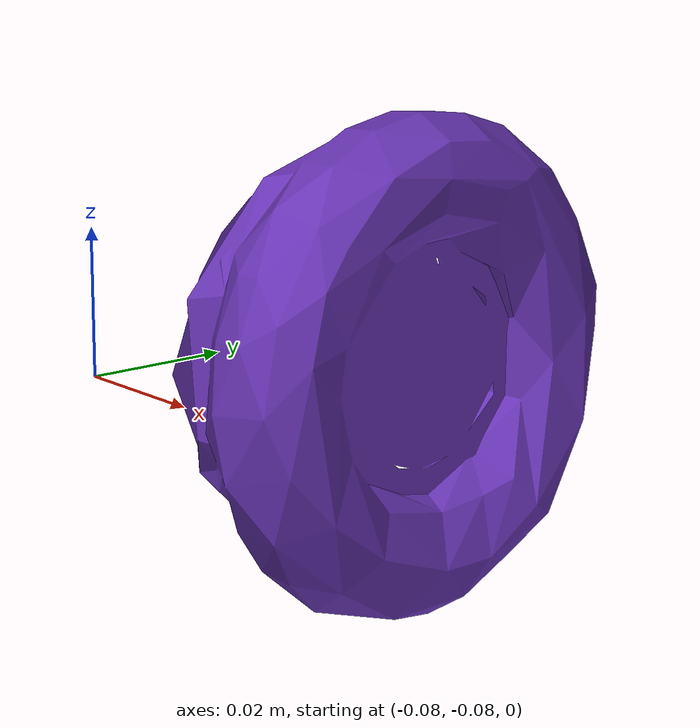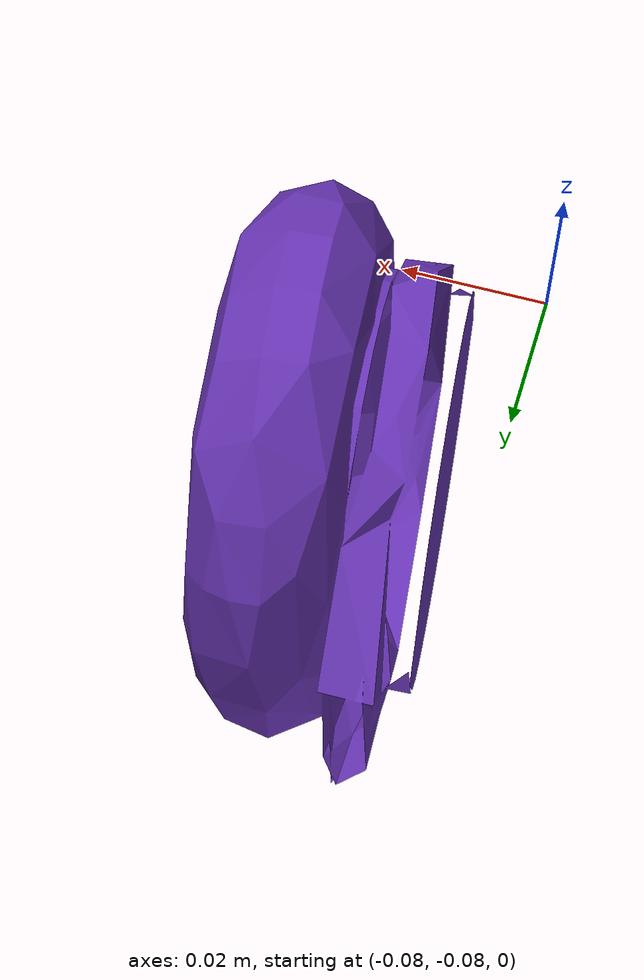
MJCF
<mujoco model="top_watertight_tiny">
  <default>
    <default group="2" type="mesh" contype="0" conaffinity="0">
      <geom group="2" type="mesh" contype="0" conaffinity="0"/>
    </default>
    <default group="3" type="mesh">
      <geom group="3" type="mesh"/>
    </default>
  </default>
  <asset>
    <mesh file="top_watertight_tiny.obj"/>
    <mesh file="top_watertight_tiny_collision_0.obj"/>
    <mesh file="top_watertight_tiny_collision_1.obj"/>
    <mesh file="top_watertight_tiny_collision_2.obj"/>
    <mesh file="top_watertight_tiny_collision_3.obj"/>
    <mesh file="top_watertight_tiny_collision_4.obj"/>
    <mesh file="top_watertight_tiny_collision_5.obj"/>
    <mesh file="top_watertight_tiny_collision_6.obj"/>
    <mesh file="top_watertight_tiny_collision_7.obj"/>
    <mesh file="top_watertight_tiny_collision_8.obj"/>
    <mesh file="top_watertight_tiny_collision_9.obj"/>
    <mesh file="top_watertight_tiny_collision_10.obj"/>
    <mesh file="top_watertight_tiny_collision_11.obj"/>
    <mesh file="top_watertight_tiny_collision_12.obj"/>
    <mesh file="top_watertight_tiny_collision_13.obj"/>
    <mesh file="top_watertight_tiny_collision_14.obj"/>
    <mesh file="top_watertight_tiny_collision_15.obj"/>
    <mesh file="top_watertight_tiny_collision_16.obj"/>
    <mesh file="top_watertight_tiny_collision_17.obj"/>
    <mesh file="top_watertight_tiny_collision_18.obj"/>
    <mesh file="top_watertight_tiny_collision_19.obj"/>
    <mesh file="top_watertight_tiny_collision_20.obj"/>
    <mesh file="top_watertight_tiny_collision_21.obj"/>
    <mesh file="top_watertight_tiny_collision_22.obj"/>
    <mesh file="top_watertight_tiny_collision_23.obj"/>
    <mesh file="top_watertight_tiny_collision_24.obj"/>
    <mesh file="top_watertight_tiny_collision_25.obj"/>
    <mesh file="top_watertight_tiny_collision_26.obj"/>
    <mesh file="top_watertight_tiny_collision_27.obj"/>
    <mesh file="top_watertight_tiny_collision_28.obj"/>
    <mesh file="top_watertight_tiny_collision_29.obj"/>
    <mesh file="top_watertight_tiny_collision_30.obj"/>
    <mesh file="top_watertight_tiny_collision_31.obj"/>
    <mesh file="top_watertight_tiny_collision_32.obj"/>
    <mesh file="top_watertight_tiny_collision_33.obj"/>
    <mesh file="top_watertight_tiny_collision_34.obj"/>
    <mesh file="top_watertight_tiny_collision_35.obj"/>
    <mesh file="top_watertight_tiny_collision_36.obj"/>
    <mesh file="top_watertight_tiny_collision_37.obj"/>
    <mesh file="top_watertight_tiny_collision_38.obj"/>
    <mesh file="top_watertight_tiny_collision_39.obj"/>
    <mesh file="top_watertight_tiny_collision_40.obj"/>
    <mesh file="top_watertight_tiny_collision_41.obj"/>
    <mesh file="top_watertight_tiny_collision_42.obj"/>
    <mesh file="top_watertight_tiny_collision_43.obj"/>
    <mesh file="top_watertight_tiny_collision_44.obj"/>
    <mesh file="top_watertight_tiny_collision_45.obj"/>
    <mesh file="top_watertight_tiny_collision_46.obj"/>
    <mesh file="top_watertight_tiny_collision_47.obj"/>
    <mesh file="top_watertight_tiny_collision_48.obj"/>
    <mesh file="top_watertight_tiny_collision_49.obj"/>
    <mesh file="top_watertight_tiny_collision_50.obj"/>
    <mesh file="top_watertight_tiny_collision_51.obj"/>
    <mesh file="top_watertight_tiny_collision_52.obj"/>
    <mesh file="top_watertight_tiny_collision_53.obj"/>
    <mesh file="top_watertight_tiny_collision_54.obj"/>
    <mesh file="top_watertight_tiny_collision_55.obj"/>
    <mesh file="top_watertight_tiny_collision_56.obj"/>
    <mesh file="top_watertight_tiny_collision_57.obj"/>
    <mesh file="top_watertight_tiny_collision_58.obj"/>
    <mesh file="top_watertight_tiny_collision_59.obj"/>
    <mesh file="top_watertight_tiny_collision_60.obj"/>
    <mesh file="top_watertight_tiny_collision_61.obj"/>
    <mesh file="top_watertight_tiny_collision_62.obj"/>
    <mesh file="top_watertight_tiny_collision_63.obj"/>
    <mesh file="top_watertight_tiny_collision_64.obj"/>
    <mesh file="top_watertight_tiny_collision_65.obj"/>
    <mesh file="top_watertight_tiny_collision_66.obj"/>
    <mesh file="top_watertight_tiny_collision_67.obj"/>
    <mesh file="top_watertight_tiny_collision_68.obj"/>
    <mesh file="top_watertight_tiny_collision_69.obj"/>
    <mesh file="top_watertight_tiny_collision_70.obj"/>
    <mesh file="top_watertight_tiny_collision_71.obj"/>
    <mesh file="top_watertight_tiny_collision_72.obj"/>
    <mesh file="top_watertight_tiny_collision_73.obj"/>
    <mesh file="top_watertight_tiny_collision_74.obj"/>
    <mesh file="top_watertight_tiny_collision_75.obj"/>
    <mesh file="top_watertight_tiny_collision_76.obj"/>
    <mesh file="top_watertight_tiny_collision_77.obj"/>
    <mesh file="top_watertight_tiny_collision_78.obj"/>
    <mesh file="top_watertight_tiny_collision_79.obj"/>
    <mesh file="top_watertight_tiny_collision_80.obj"/>
    <mesh file="top_watertight_tiny_collision_81.obj"/>
    <mesh file="top_watertight_tiny_collision_82.obj"/>
    <mesh file="top_watertight_tiny_collision_83.obj"/>
    <mesh file="top_watertight_tiny_collision_84.obj"/>
    <mesh file="top_watertight_tiny_collision_85.obj"/>
    <mesh file="top_watertight_tiny_collision_86.obj"/>
    <mesh file="top_watertight_tiny_collision_87.obj"/>
    <mesh file="top_watertight_tiny_collision_88.obj"/>
    <mesh file="top_watertight_tiny_collision_89.obj"/>
  </asset>
  <worldbody>
    <body name="top_watertight_tiny">
      <freejoint/>
      <geom mesh="top_watertight_tiny" group="2" type="mesh" rgba="0.4 0.2 0.7 1" contype="0" conaffinity="0"/>
      <geom mesh="top_watertight_tiny_collision_0" rgba="0.13967404998748034 0.14075231439194458 0.1661975414874518 1" group="3" type="mesh"/>
      <geom mesh="top_watertight_tiny_collision_1" rgba="0.27447773743301196 0.16831844666914075 0.09370749998739325 1" group="3" type="mesh"/>
      <geom mesh="top_watertight_tiny_collision_2" rgba="0.20219056866449725 0.17017001246563423 0.9278434954219208 1" group="3" type="mesh"/>
      <geom mesh="top_watertight_tiny_collision_3" rgba="0.1737053008425422 0.5798584439851775 0.5542743538526883 1" group="3" type="mesh"/>
      <geom mesh="top_watertight_tiny_collision_4" rgba="0.35029883774422077 0.051542033867411186 0.19246385584189885 1" group="3" type="mesh"/>
      <geom mesh="top_watertight_tiny_collision_5" rgba="0.7377733532067724 0.018218570703663617 0.1513376896030354 1" group="3" type="mesh"/>
      <geom mesh="top_watertight_tiny_collision_6" rgba="0.37342391334378777 0.4432227076588183 0.705320335968916 1" group="3" type="mesh"/>
      <geom mesh="top_watertight_tiny_collision_7" rgba="0.25501024886004986 0.5828347213136643 0.003481127571495879 1" group="3" type="mesh"/>
      <geom mesh="top_watertight_tiny_collision_8" rgba="0.7166619290358093 0.08472277118647165 0.29299551788600586 1" group="3" type="mesh"/>
      <geom mesh="top_watertight_tiny_collision_9" rgba="0.011452393273562733 0.8800389271475431 0.9404572475272223 1" group="3" type="mesh"/>
      <geom mesh="top_watertight_tiny_collision_10" rgba="0.5652404175792853 0.9143588339539983 0.7957143383330458 1" group="3" type="mesh"/>
      <geom mesh="top_watertight_tiny_collision_11" rgba="0.6767047471468794 0.12481457470514368 0.45185818568785563 1" group="3" type="mesh"/>
      <geom mesh="top_watertight_tiny_collision_12" rgba="0.9300104971976451 0.8860037145221749 0.8659846061743806 1" group="3" type="mesh"/>
      <geom mesh="top_watertight_tiny_collision_13" rgba="0.14998207027154797 0.5314376090248522 0.9947605468009891 1" group="3" type="mesh"/>
      <geom mesh="top_watertight_tiny_collision_14" rgba="0.8285790650451215 0.6632109243324709 0.281904838819226 1" group="3" type="mesh"/>
      <geom mesh="top_watertight_tiny_collision_15" rgba="0.9641817379555113 0.13122233033745423 0.2611958167805364 1" group="3" type="mesh"/>
      <geom mesh="top_watertight_tiny_collision_16" rgba="0.11105071110314002 0.30717053048565357 0.3571464579042224 1" group="3" type="mesh"/>
      <geom mesh="top_watertight_tiny_collision_17" rgba="0.6847288870382722 0.6298711212201424 0.8586182501740283 1" group="3" type="mesh"/>
      <geom mesh="top_watertight_tiny_collision_18" rgba="0.3002619308777329 0.9538388268800996 0.6326675671208345 1" group="3" type="mesh"/>
      <geom mesh="top_watertight_tiny_collision_19" rgba="0.8646528162403466 0.6914503511522109 0.9783332730728452 1" group="3" type="mesh"/>
      <geom mesh="top_watertight_tiny_collision_20" rgba="0.32651951624507036 0.7334866769265499 0.16191330651686675 1" group="3" type="mesh"/>
      <geom mesh="top_watertight_tiny_collision_21" rgba="0.3013116023790223 0.7382009153878227 0.04249710958021202 1" group="3" type="mesh"/>
      <geom mesh="top_watertight_tiny_collision_22" rgba="0.8532701451264887 0.30280324055993413 0.611367656859883 1" group="3" type="mesh"/>
      <geom mesh="top_watertight_tiny_collision_23" rgba="0.5546645863565443 0.6122635096529137 0.8784605070092284 1" group="3" type="mesh"/>
      <geom mesh="top_watertight_tiny_collision_24" rgba="0.15032788160147503 0.11992241047212315 0.5668713466191369 1" group="3" type="mesh"/>
      <geom mesh="top_watertight_tiny_collision_25" rgba="0.5704069351177036 0.7480618889465457 0.31793671193683504 1" group="3" type="mesh"/>
      <geom mesh="top_watertight_tiny_collision_26" rgba="0.6587967026129363 0.193670453021637 0.6257973524760053 1" group="3" type="mesh"/>
      <geom mesh="top_watertight_tiny_collision_27" rgba="0.5157598213168179 0.5821630389470978 0.2744335854965193 1" group="3" type="mesh"/>
      <geom mesh="top_watertight_tiny_collision_28" rgba="0.4153143244755383 0.5074918738326545 0.05279582785874026 1" group="3" type="mesh"/>
      <geom mesh="top_watertight_tiny_collision_29" rgba="0.7449177749971108 0.18630034922242378 0.08228517885049957 1" group="3" type="mesh"/>
      <geom mesh="top_watertight_tiny_collision_30" rgba="0.030849585953122594 0.30130808757482797 0.008591391605032306 1" group="3" type="mesh"/>
      <geom mesh="top_watertight_tiny_collision_31" rgba="0.33243398044991557 0.17762582916141045 0.17864520106782744 1" group="3" type="mesh"/>
      <geom mesh="top_watertight_tiny_collision_32" rgba="0.2515266567577963 0.021753905112934957 0.2791775922875951 1" group="3" type="mesh"/>
      <geom mesh="top_watertight_tiny_collision_33" rgba="0.555874574400965 0.2997092833367463 0.6423393310551079 1" group="3" type="mesh"/>
      <geom mesh="top_watertight_tiny_collision_34" rgba="0.4877850511833114 0.9525779954915153 0.4309599236261167 1" group="3" type="mesh"/>
      <geom mesh="top_watertight_tiny_collision_35" rgba="0.17098167613335002 0.9280862121427622 0.17912683083865522 1" group="3" type="mesh"/>
      <geom mesh="top_watertight_tiny_collision_36" rgba="0.849496938645226 0.7128622409193565 0.7480398079417069 1" group="3" type="mesh"/>
      <geom mesh="top_watertight_tiny_collision_37" rgba="0.7330555609688031 0.9947833615391981 0.7426016586948722 1" group="3" type="mesh"/>
      <geom mesh="top_watertight_tiny_collision_38" rgba="0.19669098724786105 0.18256709753004707 0.47260108587753114 1" group="3" type="mesh"/>
      <geom mesh="top_watertight_tiny_collision_39" rgba="0.2802764490275901 0.9904680597183487 0.07043951165155393 1" group="3" type="mesh"/>
      <geom mesh="top_watertight_tiny_collision_40" rgba="0.8606535371520289 0.7282820491613611 0.38854465848936914 1" group="3" type="mesh"/>
      <geom mesh="top_watertight_tiny_collision_41" rgba="0.45648560711987207 0.5844757364488465 0.6298091771935643 1" group="3" type="mesh"/>
      <geom mesh="top_watertight_tiny_collision_42" rgba="0.8832661188555881 0.2905839036995599 0.859892980594791 1" group="3" type="mesh"/>
      <geom mesh="top_watertight_tiny_collision_43" rgba="0.8903587714941185 0.9603723738482339 0.4823745155050124 1" group="3" type="mesh"/>
      <geom mesh="top_watertight_tiny_collision_44" rgba="0.3290830010201523 0.36843705504337965 0.26056765703337526 1" group="3" type="mesh"/>
      <geom mesh="top_watertight_tiny_collision_45" rgba="0.6592201042136988 0.9171417300718738 0.8447128340455399 1" group="3" type="mesh"/>
      <geom mesh="top_watertight_tiny_collision_46" rgba="0.994980233087435 0.625533426471963 0.94467366870189 1" group="3" type="mesh"/>
      <geom mesh="top_watertight_tiny_collision_47" rgba="0.9656864145199516 0.4047216680546214 0.1440426772740221 1" group="3" type="mesh"/>
      <geom mesh="top_watertight_tiny_collision_48" rgba="0.4409851649543113 0.5981501520367326 0.26219244271712927 1" group="3" type="mesh"/>
      <geom mesh="top_watertight_tiny_collision_49" rgba="0.5493678577203934 0.9344951766302142 0.3653403826519066 1" group="3" type="mesh"/>
      <geom mesh="top_watertight_tiny_collision_50" rgba="0.9075510097344245 0.7184516194488307 0.6781844223437313 1" group="3" type="mesh"/>
      <geom mesh="top_watertight_tiny_collision_51" rgba="0.9094860222015301 0.6449212845509024 0.7116832406417487 1" group="3" type="mesh"/>
      <geom mesh="top_watertight_tiny_collision_52" rgba="0.07696308616619063 0.25965772376115304 0.7348175173173964 1" group="3" type="mesh"/>
      <geom mesh="top_watertight_tiny_collision_53" rgba="0.011764913108552322 0.4918918711455815 0.38778508781154086 1" group="3" type="mesh"/>
      <geom mesh="top_watertight_tiny_collision_54" rgba="0.8035056651435313 0.2664589081995561 0.8159268986284601 1" group="3" type="mesh"/>
      <geom mesh="top_watertight_tiny_collision_55" rgba="0.7986448020010156 0.9663051787542839 0.8732648066058498 1" group="3" type="mesh"/>
      <geom mesh="top_watertight_tiny_collision_56" rgba="0.7088235780483046 0.3915140769127913 0.6783854794893005 1" group="3" type="mesh"/>
      <geom mesh="top_watertight_tiny_collision_57" rgba="0.6168218807540101 0.27716703141872 0.0848946334073446 1" group="3" type="mesh"/>
      <geom mesh="top_watertight_tiny_collision_58" rgba="0.3267921843729611 0.12124028043359758 0.29458869302743385 1" group="3" type="mesh"/>
      <geom mesh="top_watertight_tiny_collision_59" rgba="0.6398987435397012 0.49489887033832225 0.19700863023311632 1" group="3" type="mesh"/>
      <geom mesh="top_watertight_tiny_collision_60" rgba="0.6135952544600703 0.4157125915195097 0.8437878668165596 1" group="3" type="mesh"/>
      <geom mesh="top_watertight_tiny_collision_61" rgba="0.9868143276382189 0.10273905766965263 0.9175893412885419 1" group="3" type="mesh"/>
      <geom mesh="top_watertight_tiny_collision_62" rgba="0.9184060610336753 0.33961798888112493 0.11817735047112565 1" group="3" type="mesh"/>
      <geom mesh="top_watertight_tiny_collision_63" rgba="0.09186943882936671 0.23121574589403393 0.12277060516911709 1" group="3" type="mesh"/>
      <geom mesh="top_watertight_tiny_collision_64" rgba="0.8675039770476943 0.9144963595656463 0.3485799848888754 1" group="3" type="mesh"/>
      <geom mesh="top_watertight_tiny_collision_65" rgba="0.45642886118899284 0.5818203372009288 0.5912805458571865 1" group="3" type="mesh"/>
      <geom mesh="top_watertight_tiny_collision_66" rgba="0.10066102598640958 0.5682382839260302 0.3647196959746425 1" group="3" type="mesh"/>
      <geom mesh="top_watertight_tiny_collision_67" rgba="0.6652462344473601 0.21983371509262528 0.3277569885600432 1" group="3" type="mesh"/>
      <geom mesh="top_watertight_tiny_collision_68" rgba="0.7019380841774137 0.40269949811966077 0.9119364030887211 1" group="3" type="mesh"/>
      <geom mesh="top_watertight_tiny_collision_69" rgba="0.3782898761843101 0.28180873678340057 0.700701358878118 1" group="3" type="mesh"/>
      <geom mesh="top_watertight_tiny_collision_70" rgba="0.5738493723532435 0.642023093029665 0.2932964319113869 1" group="3" type="mesh"/>
      <geom mesh="top_watertight_tiny_collision_71" rgba="0.2805413845210597 0.2250068554974355 0.9254373388539623 1" group="3" type="mesh"/>
      <geom mesh="top_watertight_tiny_collision_72" rgba="0.6914721461866833 0.11549506994490277 0.788236146137844 1" group="3" type="mesh"/>
      <geom mesh="top_watertight_tiny_collision_73" rgba="0.027588820001667957 0.2374825976339714 0.6406158118722801 1" group="3" type="mesh"/>
      <geom mesh="top_watertight_tiny_collision_74" rgba="0.05712961778111458 0.10294205197079664 0.5253403339840332 1" group="3" type="mesh"/>
      <geom mesh="top_watertight_tiny_collision_75" rgba="0.6557210915415159 0.7159278398852047 0.5982558642454315 1" group="3" type="mesh"/>
      <geom mesh="top_watertight_tiny_collision_76" rgba="0.05389141806306652 0.14594565683592264 0.8938497710730564 1" group="3" type="mesh"/>
      <geom mesh="top_watertight_tiny_collision_77" rgba="0.7042997075801115 0.4368066687273362 0.6417999486015081 1" group="3" type="mesh"/>
      <geom mesh="top_watertight_tiny_collision_78" rgba="0.872015044832393 0.26452949467721965 0.22047074134144273 1" group="3" type="mesh"/>
      <geom mesh="top_watertight_tiny_collision_79" rgba="0.2667081030051812 0.25522709480071526 0.5403099927590077 1" group="3" type="mesh"/>
      <geom mesh="top_watertight_tiny_collision_80" rgba="0.9489309295749416 0.19386140189479262 0.9124282659259071 1" group="3" type="mesh"/>
      <geom mesh="top_watertight_tiny_collision_81" rgba="0.15211390633605715 0.6509317628926925 0.609019679795088 1" group="3" type="mesh"/>
      <geom mesh="top_watertight_tiny_collision_82" rgba="0.4164747689357645 0.4800405760077463 0.1457654864757605 1" group="3" type="mesh"/>
      <geom mesh="top_watertight_tiny_collision_83" rgba="0.1801922654089091 0.6120752785556838 0.8950074237468112 1" group="3" type="mesh"/>
      <geom mesh="top_watertight_tiny_collision_84" rgba="0.07969151109271888 0.06674675596562973 0.7921586195211217 1" group="3" type="mesh"/>
      <geom mesh="top_watertight_tiny_collision_85" rgba="0.5659851830112068 0.2589356475516005 0.040022168331392716 1" group="3" type="mesh"/>
      <geom mesh="top_watertight_tiny_collision_86" rgba="0.5921924715063474 0.16568562881569526 0.5104878199169025 1" group="3" type="mesh"/>
      <geom mesh="top_watertight_tiny_collision_87" rgba="0.7444229038536961 0.9257284309578364 0.4448366024516396 1" group="3" type="mesh"/>
      <geom mesh="top_watertight_tiny_collision_88" rgba="0.7842074419950688 0.23155588816803008 0.34134744064275413 1" group="3" type="mesh"/>
      <geom mesh="top_watertight_tiny_collision_89" rgba="0.8911274336181056 0.0987739927826351 0.4676796282803789 1" group="3" type="mesh"/>
    </body>
  </worldbody>
</mujoco>
